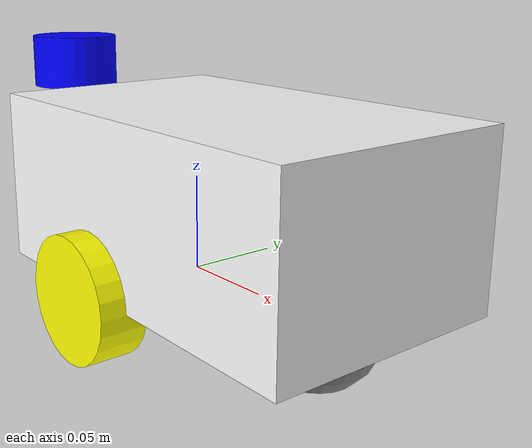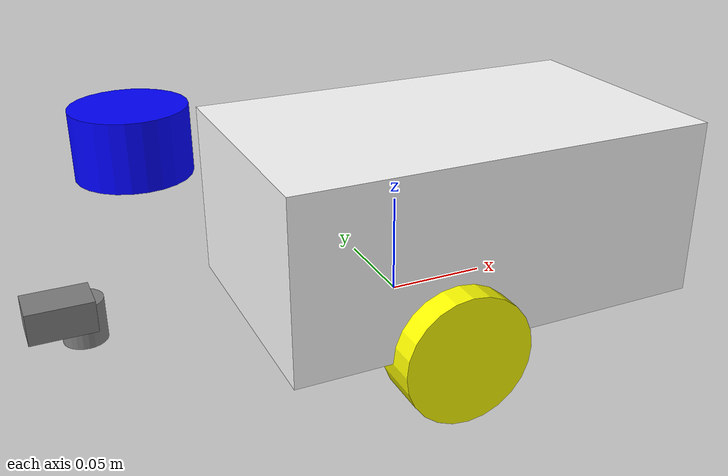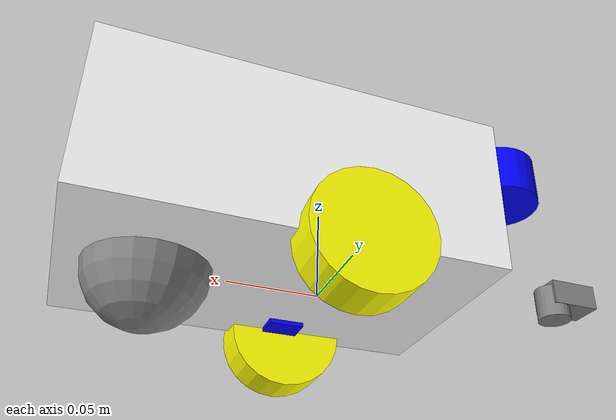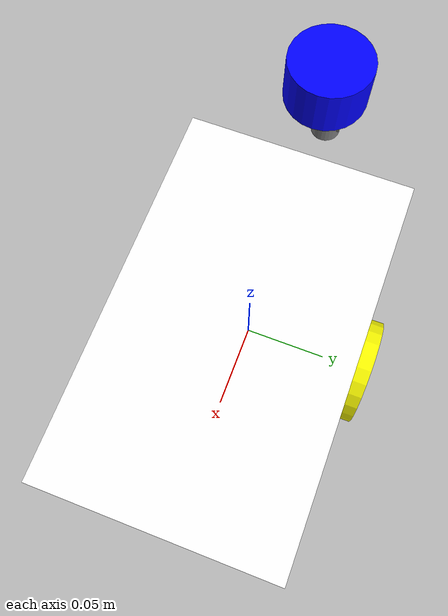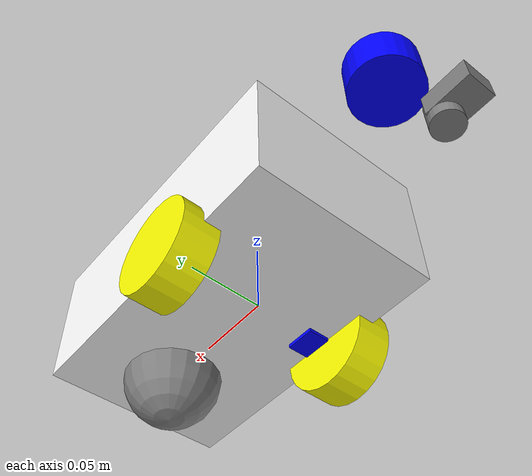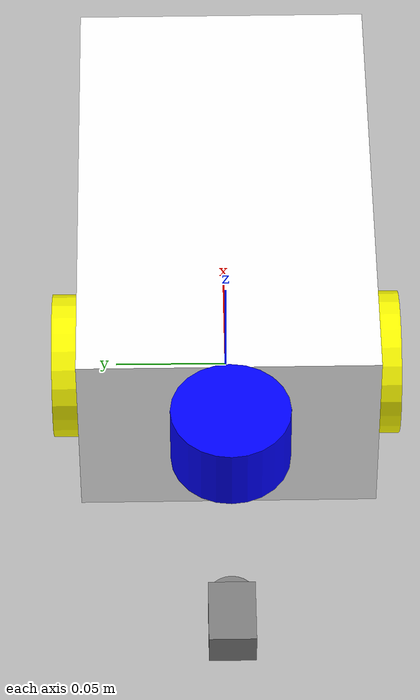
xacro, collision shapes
<?xml version="1.0"?>
<robot xmlns:xacro="http://www.ros.org/wiki/xacro" name="my_bot">

    <xacro:include filename="robot_core.xacro"/>
    <xacro:include filename="camera.xacro"/>
    <xacro:include filename="imu.xacro"/>
    <xacro:include filename="sonar.xacro"/>
    <xacro:include filename="lidar.xacro"/>

</robot>

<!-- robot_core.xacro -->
<robot xmlns:xacro="http://www.ros.org/wiki/xacro" name="my_bot">
    <xacro:include filename="inertial_macros.xacro"/>

    <material name="yellow">
        <color rgba="1 1 0 1"/>
    </material>

    <material name="white">
        <color rgba="1 1 1 1"/>
    </material>

    <material name="gray">
        <color rgba="0.5 0.5 0.5 1"/>
    </material>

    <material name="blue">
        <color rgba="0 0 1 1"/>
    </material>

    <!-- Define the robot's base -->
    <link name="base_link">

    </link>

    <joint name="base_footprint_joint" type="fixed">
        <parent link="base_link"/>
        <child link="base_footprint"/>
        <origin xyz="0 0 0"/>
    </joint>

    <link name="base_footprint">
    </link>

    <!-- CHASSIS LINK -->
    <joint name="chassis_joint" type="fixed">
        <parent link="base_link"/>
        <child link="chassis"/>
        <origin xyz="-0.08 0 0"/>
    </joint>

    <link name="chassis">
        <visual>
            <origin xyz="0.1075 0 0.045"/>
            <geometry>
                <mesh filename="package://my_bot/meshes/box_unit.stl" scale="0.215 0.13 0.09"/>
            </geometry>
            <material name="white"/>
        </visual>
        <collision>
            <origin xyz="0.1075 0 0.045"/>
            <geometry>
                <box size="0.215 0.13 0.09"/>
            </geometry>
        </collision>
        <xacro:inertial_box mass="0.4" x="0.215" y="0.13" z="0.09">
            <origin xyz="0.1075 0 0.045"/>
        </xacro:inertial_box>
    </link>

    <!-- WHEEL LINKS LEFT-->
    <joint name="wheel_left_joint" type="continuous">
        <parent link="base_link"/>
        <child link="wheel_left"/>
        <origin xyz="0 0.066 0" rpy="-1.57 0 0"/>
        <axis xyz="0 0 1"/>
    </joint>

    <link name="wheel_left">
        <visual>
            <origin xyz="0 0 0"/>
            <geometry>
                <mesh filename="package://my_bot/meshes/cylinder_unit.stl" scale="0.065 0.065 0.025"/>
            </geometry>
            <material name="yellow"/>
        </visual>
        <collision>
            <geometry>
                <cylinder radius="0.0325" length="0.025"/>
            </geometry>
        </collision>
        <xacro:inertial_cylinder mass="0.05" length="0.025" radius="0.0325">
            <origin xyz="0 0 0" rpy="0 0 0"/>
        </xacro:inertial_cylinder>
    </link>

    <!-- WHEEL LINKS RIGHT -->
    <joint name="wheel_right_joint" type="continuous">
        <parent link="base_link"/>
        <child link="wheel_right"/>
        <origin xyz="0 -0.066 0" rpy="1.57 0 0"/>
        <axis xyz="0 0 -1"/>
    </joint>

    <link name="wheel_right">
        <visual>
            <origin xyz="0 0 0"/>
            <geometry>
                <mesh filename="package://my_bot/meshes/cylinder_unit.stl" scale="0.065 0.065 0.025"/>
            </geometry>
            <material name="yellow"/>
        </visual>
        <collision>
            <geometry>
                <cylinder radius="0.0325" length="0.025"/>
            </geometry>
        </collision>
        <xacro:inertial_cylinder mass="0.05" length="0.025" radius="0.0325">
            <origin xyz="0 0 0" rpy="0 0 0"/>
        </xacro:inertial_cylinder>
    </link>

    <!-- Caster Wheel link -->

    <joint name="caster_wheel_joint" type="fixed">
        <parent link="chassis"/>
        <child link="caster_wheel"/>
        <origin xyz="0.17 0 0"/>
    </joint>

    <link name="caster_wheel">
        <visual>
            <geometry>
                <sphere radius="0.0325"/>
            </geometry>
            <material name="gray"/>
        </visual>
        <collision>
            <geometry>
                <sphere radius="0.0325"/>
            </geometry>
        </collision>
        <xacro:inertial_sphere mass="0.05" radius="0.0325">
            <origin xyz="0 0 0" rpy="0 0 0"/>
        </xacro:inertial_sphere>
    </link>

</robot>

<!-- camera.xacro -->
<robot xmlns:xacro="http://www.ros.org/wiki/xacro" >

    <link name="camera_frame">
        <visual>
            <geometry>
                <mesh filename="package://my_bot/meshes/box_unit.stl" scale="0.03 0.02 0.015"/>
            </geometry>
            <material name="gray"/>
        </visual>
        <collision>
            <geometry>
                <box size="0.03 0.02 0.015"/>
            </geometry>
        </collision>
        <xacro:inertial_box mass="0.03" x="0.03" y="0.02" z="0.015">
            <origin xyz="0 0 0" rpy="0 0 0"/>
        </xacro:inertial_box>
    </link>

    <joint name="camera_joint" type ="fixed">
        <parent link="chassis"/>
        <child link="camera_frame"/>
        <origin xyz= "-0.085 0 0.025" rpy="0 0 0"/>
    </joint>

    <link name="camera_optical_frame"/>

    <joint name="camera_optical_joint" type="fixed">
        <parent link="camera_frame"/>
        <child link="camera_optical_frame"/>
        <origin xyz="0 0 0" rpy="-1.5708 0 -1.5708"/>
    </joint>

</robot>

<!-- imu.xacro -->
<robot xmlns:xacro="http://www.ros.org/wiki/xacro" >

    <link name="imu_frame">
        <visual>
            <geometry>
                <mesh filename="package://my_bot/meshes/box_unit.stl" scale="0.02 0.015 0.005"/>
            </geometry>
            <material name="blue"/>
        </visual>
        <collision>
            <geometry>
                <box size="0.02 0.015 0.005"/>
            </geometry>
        </collision>
        <xacro:inertial_box mass="0.01" x="0.02" y="0.015" z="0.005">
            <origin xyz="0 0 0" rpy="0 0 0"/>
        </xacro:inertial_box>
    </link>

    <joint name="imu_joint" type ="fixed">
        <parent link="chassis"/>
        <child link="imu_frame"/>
        <origin xyz= "0.085 -0.045 0" rpy="0 0 0"/>
    </joint>
</robot>

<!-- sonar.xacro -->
<robot xmlns:xacro="http://www.ros.org/wiki/xacro" >

    <link name="sonar_frame">
        <visual>
            <geometry>
                <mesh filename="package://my_bot/meshes/cylinder_unit.stl" scale="0.02 0.02 0.02"/>
            </geometry>
            <material name="gray"/>
        </visual>
        <collision>
            <geometry>
                <cylinder radius="0.01" length="0.02"/>
            </geometry>
        </collision>
        <xacro:inertial_cylinder mass="0.01" length="0.02" radius="0.01">
            <origin xyz="0 0 0" rpy="0 0 0"/>
        </xacro:inertial_cylinder>
    </link>

    <joint name="sonar_joint" type ="fixed">
        <parent link="chassis"/>
        <child link="sonar_frame"/>
        <origin xyz= "-0.075 0 0.02" rpy="0 0 0"/>
    </joint>

</robot>

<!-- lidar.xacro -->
<robot xmlns:xacro="http://www.ros.org/wiki/xacro" >

    <link name="laser_frame">
        <visual>
            <origin xyz="0 0 0" rpy="0 0 0"/>
            <geometry>
                <mesh filename="package://my_bot/meshes/cylinder_unit.stl" scale="0.05 0.05 0.03"/>
            </geometry>
            <material name="blue"/>
        </visual>
        <collision>
            <geometry>
                <cylinder radius="0.025" length="0.03"/>
            </geometry>
        </collision>
        <xacro:inertial_cylinder mass="0.08" length="0.03" radius="0.025">
            <origin xyz="0 0 0" rpy="0 0 0"/>
        </xacro:inertial_cylinder>
    </link>

    <joint name="lidar_joint" type ="fixed">
        <parent link="chassis"/>
        <child link="laser_frame"/>
        <origin xyz= "-0.045 0 0.10" rpy="0 0 -1.57"/>
    </joint>

</robot>
